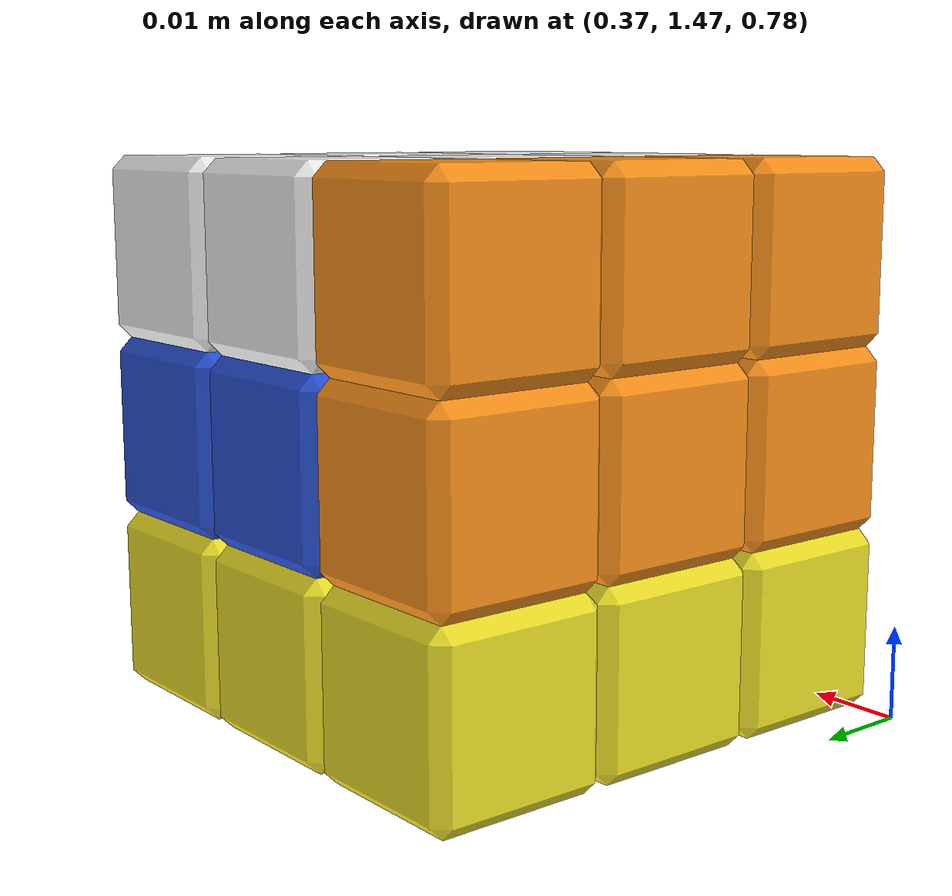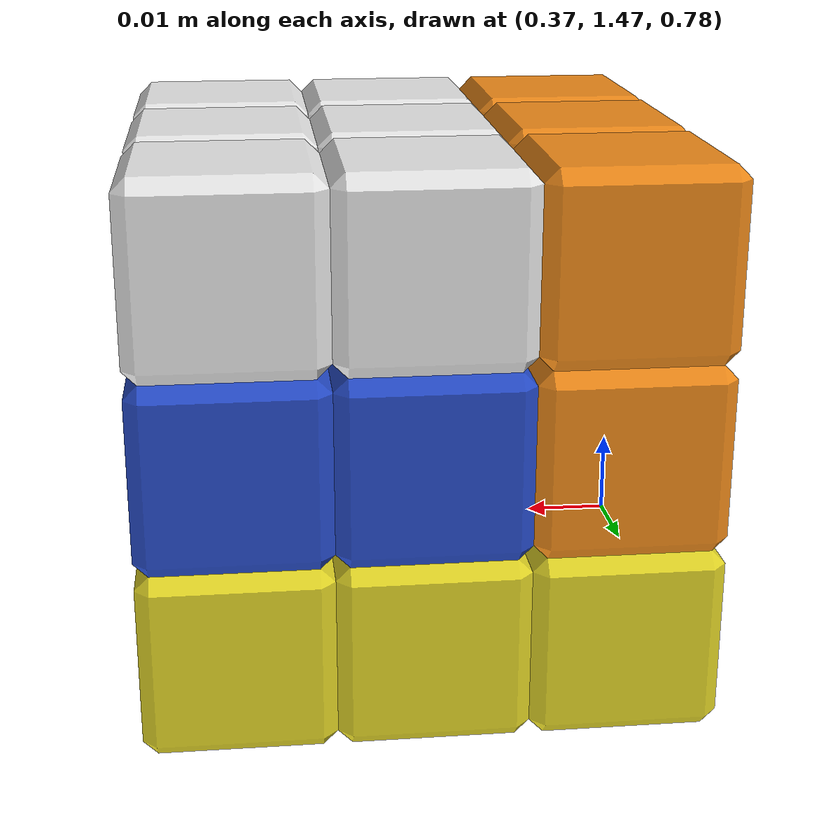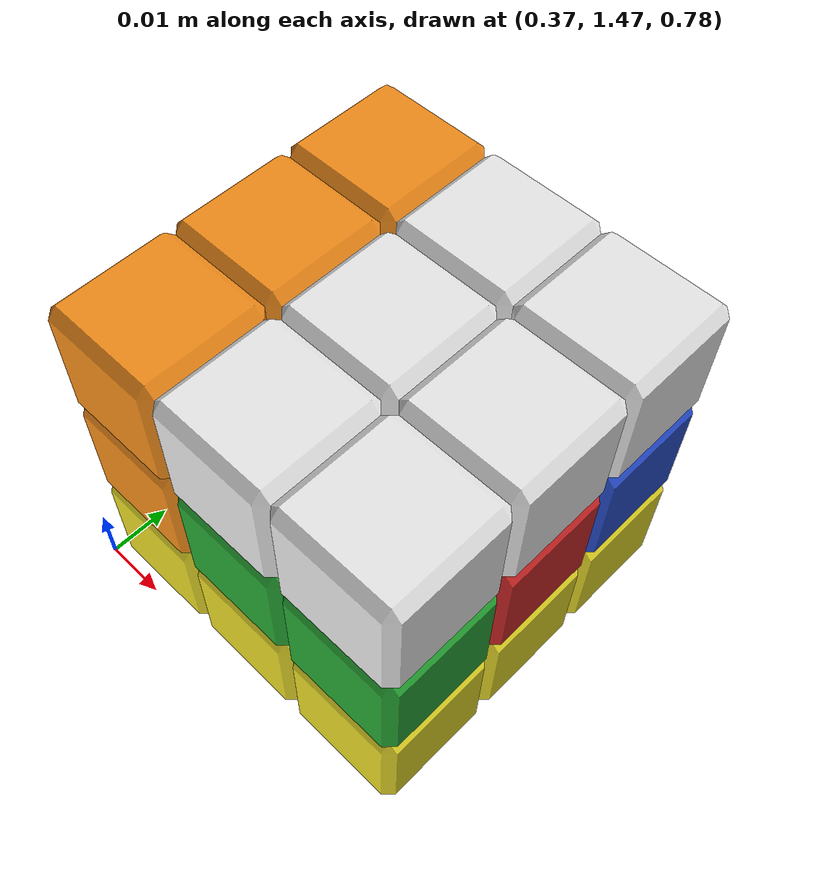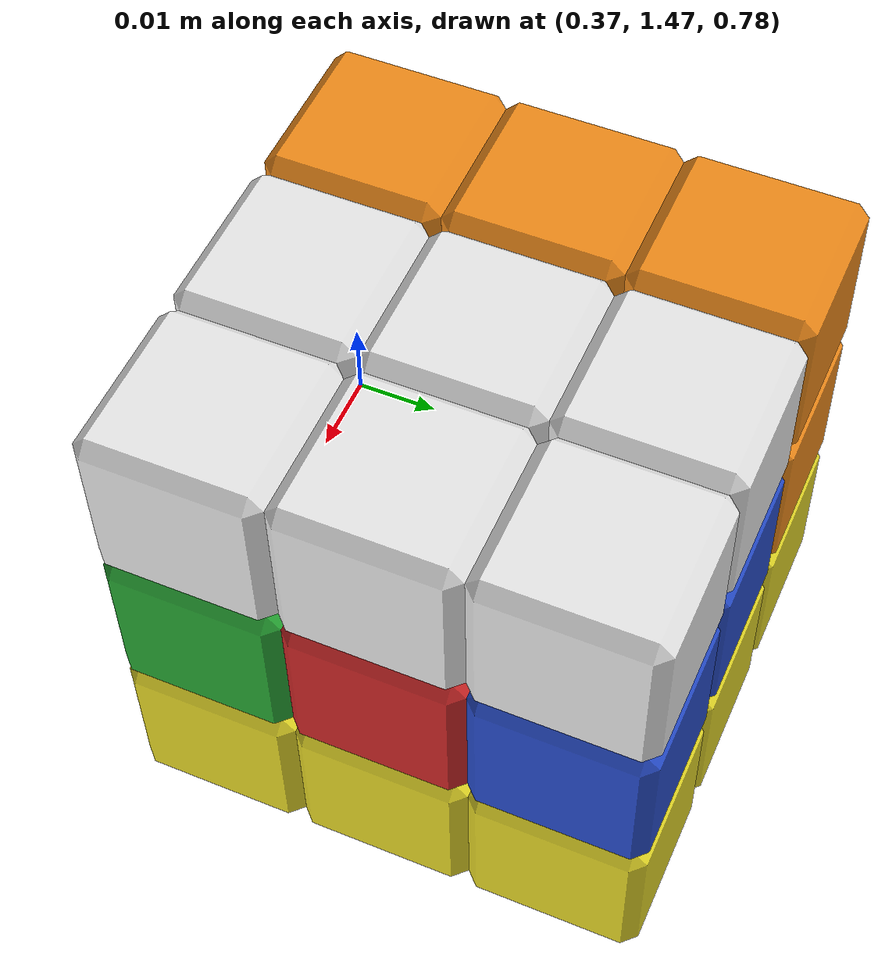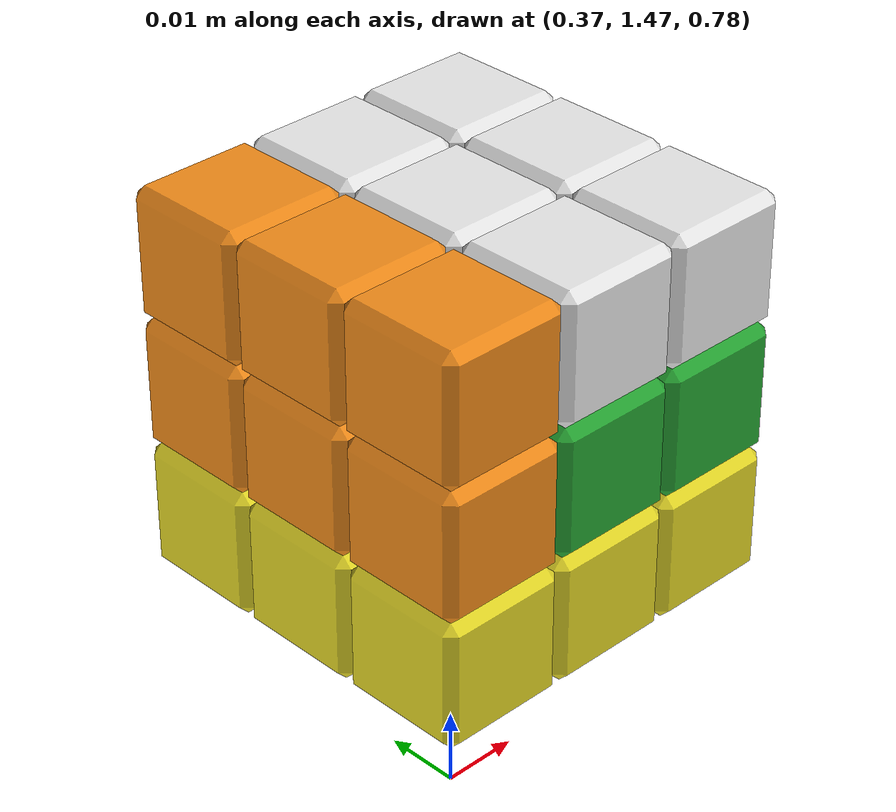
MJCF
<mujoco model="Cube 3x3x3">

  <statistic meansize="0.0087" extent="0.1"/>

  <default>
    <geom mass="0.00253704"/>
    <motor ctrlrange="-0.05 0.05"/>
    <default class="cubelet">
          <joint type="ball" armature="0.0001" damping="0.0005" frictionloss="0.001"/>
      <geom type="mesh" condim="1" mesh="cubelet" euler="0 0 0"/>
    </default>
    <default class="core">
      <geom type="sphere" contype="0" conaffinity="0" group="4" size="0.01"/>
    </default>
  </default>

  <asset>
    <texture rgb1="0 0 0" gridsize="3 4" gridlayout=".....F......" file="../objects_assets/cube_3x3x3/white.png"/>
    <texture rgb1="0 0 0" gridsize="3 4" gridlayout=".....B......" file="../objects_assets/cube_3x3x3/yellow.png"/>
    <texture rgb1="0 0 0" gridsize="3 4" gridlayout=".....D......" file="../objects_assets/cube_3x3x3/red.png"/>
    <texture rgb1="0 0 0" gridsize="3 4" gridlayout=".....U......" file="../objects_assets/cube_3x3x3/orange.png"/>
    <texture rgb1="0 0 0" gridsize="3 4" gridlayout=".....R......" file="../objects_assets/cube_3x3x3/blue.png"/>
    <texture rgb1="0 0 0" gridsize="3 4" gridlayout=".....L......" file="../objects_assets/cube_3x3x3/green.png"/>
    <texture rgb1="0 0 0" gridsize="3 4" gridlayout=".....DF....." file="../objects_assets/cube_3x3x3/red_white.png"/>
    <texture rgb1="0 0 0" gridsize="3 4" gridlayout=".....UF....." file="../objects_assets/cube_3x3x3/orange_white.png"/>
    <texture rgb1="0 0 0" gridsize="3 4" gridlayout=".....RF....." file="../objects_assets/cube_3x3x3/blue_white.png"/>
    <texture rgb1="0 0 0" gridsize="3 4" gridlayout=".....LF....." file="../objects_assets/cube_3x3x3/green_white.png"/>
    <texture rgb1="0 0 0" gridsize="3 4" gridlayout=".....DB....." file="../objects_assets/cube_3x3x3/red_yellow.png"/>
    <texture rgb1="0 0 0" gridsize="3 4" gridlayout=".....UB....." file="../objects_assets/cube_3x3x3/orange_yellow.png"/>
    <texture rgb1="0 0 0" gridsize="3 4" gridlayout=".....RB....." file="../objects_assets/cube_3x3x3/blue_yellow.png"/>
    <texture rgb1="0 0 0" gridsize="3 4" gridlayout=".....LB....." file="../objects_assets/cube_3x3x3/green_yellow.png"/>
    <texture rgb1="0 0 0" gridsize="3 4" gridlayout=".....UD....." file="../objects_assets/cube_3x3x3/orange_red.png"/>
    <texture rgb1="0 0 0" gridsize="3 4" gridlayout=".....RD....." file="../objects_assets/cube_3x3x3/blue_red.png"/>
    <texture rgb1="0 0 0" gridsize="3 4" gridlayout=".....LD....." file="../objects_assets/cube_3x3x3/green_red.png"/>
    <texture rgb1="0 0 0" gridsize="3 4" gridlayout=".....RU....." file="../objects_assets/cube_3x3x3/blue_orange.png"/>
    <texture rgb1="0 0 0" gridsize="3 4" gridlayout=".....LU....." file="../objects_assets/cube_3x3x3/green_orange.png"/>
    <texture rgb1="0 0 0" gridsize="3 4" gridlayout=".....RDF...." file="../objects_assets/cube_3x3x3/blue_red_white.png"/>
    <texture rgb1="0 0 0" gridsize="3 4" gridlayout=".....LDF...." file="../objects_assets/cube_3x3x3/green_red_white.png"/>
    <texture rgb1="0 0 0" gridsize="3 4" gridlayout=".....RUF...." file="../objects_assets/cube_3x3x3/blue_orange_white.png"/>
    <texture rgb1="0 0 0" gridsize="3 4" gridlayout=".....LUF...." file="../objects_assets/cube_3x3x3/green_orange_white.png"/>
    <texture rgb1="0 0 0" gridsize="3 4" gridlayout=".....RDB...." file="../objects_assets/cube_3x3x3/blue_red_yellow.png"/>
    <texture rgb1="0 0 0" gridsize="3 4" gridlayout=".....LDB...." file="../objects_assets/cube_3x3x3/green_red_yellow.png"/>
    <texture rgb1="0 0 0" gridsize="3 4" gridlayout=".....RUB...." file="../objects_assets/cube_3x3x3/blue_orange_yellow.png"/>
    <texture rgb1="0 0 0" gridsize="3 4" gridlayout=".....LUB...." file="../objects_assets/cube_3x3x3/green_orange_yellow.png"/>
    <material name="white" texture="white"/>
    <material name="yellow" texture="yellow"/>
    <material name="red" texture="red"/>
    <material name="orange" texture="orange"/>
    <material name="blue" texture="blue"/>
    <material name="green" texture="green"/>
    <material name="red_white" texture="red_white"/>
    <material name="orange_white" texture="orange_white"/>
    <material name="blue_white" texture="blue_white"/>
    <material name="green_white" texture="green_white"/>
    <material name="red_yellow" texture="red_yellow"/>
    <material name="orange_yellow" texture="orange_yellow"/>
    <material name="blue_yellow" texture="blue_yellow"/>
    <material name="green_yellow" texture="green_yellow"/>
    <material name="orange_red" texture="orange_red"/>
    <material name="blue_red" texture="blue_red"/>
    <material name="green_red" texture="green_red"/>
    <material name="blue_orange" texture="blue_orange"/>
    <material name="green_orange" texture="green_orange"/>
    <material name="blue_red_white" texture="blue_red_white"/>
    <material name="green_red_white" texture="green_red_white"/>
    <material name="blue_orange_white" texture="blue_orange_white"/>
    <material name="green_orange_white" texture="green_orange_white"/>
    <material name="blue_red_yellow" texture="blue_red_yellow"/>
    <material name="green_red_yellow" texture="green_red_yellow"/>
    <material name="blue_orange_yellow" texture="blue_orange_yellow"/>
    <material name="green_orange_yellow" texture="green_orange_yellow"/>
    <mesh name="cubelet" scale="1e-3 1e-3 1e-3"
          vertex="8.075   9.5    -8.075  -8.075   9.5    -8.075   8.075   9.5     8.075
                 -8.075   9.5     8.075  -9.5     8.075  -8.075  -9.5    -8.075  -8.075
                 -9.5     8.075   8.075  -9.5    -8.075   8.075   8.075  -9.5    -8.075
                  8.075  -9.5     8.075  -8.075  -9.5    -8.075  -8.075  -9.5     8.075
                  9.5     8.075   8.075   9.5    -8.075   8.075   9.5     8.075  -8.075
                  9.5    -8.075  -8.075   8.075   8.075   9.5    -8.075   8.075   9.5
                  8.075  -8.075   9.5    -8.075  -8.075   9.5     8.075  -8.075  -9.5
                 -8.075  -8.075  -9.5     8.075   8.075  -9.5    -8.075   8.075  -9.5"/>
  </asset>

    <worldbody>
    <body name="core" childclass="cubelet" pos="0.4 1.5 0.81">
        <freejoint/>

      <geom class="core"/>
      <body name="pX">
        <joint name="pX" type="hinge" axis="1 0 0"/>
        <geom material="red" pos="0.019 0 0"/>
      </body>
      <body name="nX">
        <joint name="nX" type="hinge" axis="-1 0 0"/>
        <geom material="orange" pos="-0.019 0 0"/>
      </body>
      <body name="pY">
        <joint name="pY" type="hinge" axis="0 1 0"/>
        <geom material="blue" pos="0 0.019 0"/>
      </body>
      <body name="nY">
        <joint name="nY" type="hinge" axis="0 -1 0"/>
        <geom material="green" pos="0 -0.019 0"/>
      </body>
      <body name="pZ">
        <joint name="pZ" type="hinge" axis="0 0 1"/>
        <geom material="white" pos="0 0 0.019"/>
      </body>
      <body name="nZ">
        <joint name="nZ" type="hinge" axis="0 0 -1"/>
        <geom material="yellow" pos="0 0 -0.019"/>
      </body>
      <body name="pX_pY">
        <joint name="pX_pY"/>
        <geom material="blue_red" pos="0.019 0.019 0"/>
      </body>
      <body name="nY_pX">
        <joint name="nY_pX"/>
        <geom material="green_red" pos="0.019 -0.019 0"/>
      </body>
      <body name="pX_pZ">
        <joint name="pX_pZ"/>
        <geom material="red_white" pos="0.019 0 0.019"/>
      </body>
      <body name="nZ_pX">
        <joint name="nZ_pX"/>
        <geom material="red_yellow" pos="0.019 0 -0.019"/>
      </body>
      <body name="nX_pY">
        <joint name="nX_pY"/>
        <geom material="blue_orange" pos="-0.019 0.019 0"/>
      </body>
      <body name="nX_nY">
        <joint name="nX_nY"/>
        <geom material="green_orange" pos="-0.019 -0.019 0"/>
      </body>
      <body name="nX_pZ">
        <joint name="nX_pZ"/>
        <geom material="orange_white" pos="-0.019 0 0.019"/>
      </body>
      <body name="nX_nZ">
        <joint name="nX_nZ"/>
        <geom material="orange_yellow" pos="-0.019 0 -0.019"/>
      </body>
      <body name="pY_pZ">
        <joint name="pY_pZ"/>
        <geom material="blue_white" pos="0 0.019 0.019"/>
      </body>
      <body name="nZ_pY">
        <joint name="nZ_pY"/>
        <geom material="blue_yellow" pos="0 0.019 -0.019"/>
      </body>
      <body name="nY_pZ">
        <joint name="nY_pZ"/>
        <geom material="green_white" pos="0 -0.019 0.019"/>
      </body>
      <body name="nY_nZ">
        <joint name="nY_nZ"/>
        <geom material="green_yellow" pos="0 -0.019 -0.019"/>
      </body>
      <body name="pX_pY_pZ">
        <joint name="pX_pY_pZ"/>
        <geom material="blue_red_white" pos="0.019 0.019 0.019"/>
      </body>
      <body name="nZ_pX_pY">
        <joint name="nZ_pX_pY"/>
        <geom material="blue_red_yellow" pos="0.019 0.019 -0.019"/>
      </body>
      <body name="nY_pX_pZ">
        <joint name="nY_pX_pZ"/>
        <geom material="green_red_white" pos="0.019 -0.019 0.019"/>
      </body>
      <body name="nY_nZ_pX">
        <joint name="nY_nZ_pX"/>
        <geom material="green_red_yellow" pos="0.019 -0.019 -0.019"/>
      </body>
      <body name="nX_pY_pZ">
        <joint name="nX_pY_pZ"/>
        <geom material="blue_orange_white" pos="-0.019 0.019 0.019"/>
      </body>
      <body name="nX_nZ_pY">
        <joint name="nX_nZ_pY"/>
        <geom material="blue_orange_yellow" pos="-0.019 0.019 -0.019"/>
      </body>
      <body name="nX_nY_pZ">
        <joint name="nX_nY_pZ"/>
        <geom material="green_orange_white" pos="-0.019 -0.019 0.019"/>
      </body>
      <body name="nX_nY_nZ">
        <joint name="nX_nY_nZ"/>
        <geom material="green_orange_yellow" pos="-0.019 -0.019 -0.019"/>
      </body>
    </body>
  </worldbody>

</mujoco>
